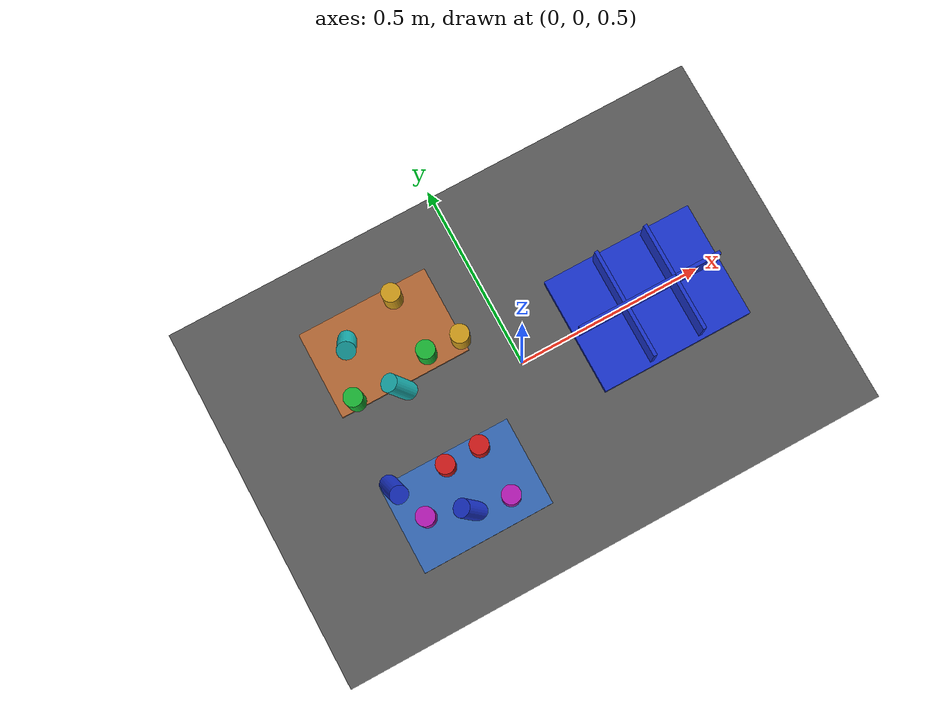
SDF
<?xml version="1.0" ?>
<sdf version="1.9">
  <!-- Standalone M1B scene.  The controller-backed Panda is spawned by the
       existing launch path; this file never alters the frozen M1A cube world. -->
  <world name="industrial_cylinder_v1">
    <physics name="bullet" type="bullet"><max_step_size>0.001</max_step_size><real_time_factor>1.0</real_time_factor></physics>
    <plugin name="gz::sim::systems::Physics" filename="gz-sim-physics-system"><engine><filename>gz-physics-bullet-featherstone-plugin</filename></engine></plugin>
    <plugin name="gz::sim::systems::UserCommands" filename="gz-sim-user-commands-system"/>
    <plugin name="gz::sim::systems::SceneBroadcaster" filename="gz-sim-scene-broadcaster-system"/>
    <plugin name="gz::sim::systems::Sensors" filename="gz-sim-sensors-system"><render_engine>ogre2</render_engine></plugin>
    <gravity>0 0 -9.81</gravity>
    <light type="directional" name="industrial_light"><pose>0 0 5 0 0 0</pose><direction>-0.3 0.2 -0.9</direction><diffuse>0.9 0.9 0.9 1</diffuse></light>
    <model name="industrial_work_table"><static>true</static><link name="link"><pose>0 0 0.4 0 0 0</pose><collision name="collision"><geometry><box><size>1.5 1.0 0.1</size></box></geometry></collision><visual name="visual"><geometry><box><size>1.5 1.0 0.1</size></box></geometry><material><diffuse>0.35 0.35 0.35 1</diffuse></material></visual></link></model>
    <model name="camera_fixture"><static>true</static><link name="camera_rgbd"><pose>-0.80 -0.80 1.40 0 0.77 0.93</pose><sensor name="front_rgbd" type="rgbd_camera"><always_on>1</always_on><update_rate>15</update_rate><topic>/xh/camera/rgbd</topic><camera><horizontal_fov>1.047</horizontal_fov><image><width>640</width><height>480</height><format>R8G8B8</format></image><clip><near>0.1</near><far>4.0</far></clip></camera></sensor></link></model>
    <model name="incoming_zone_a"><static>true</static><link name="link"><pose>-0.28 -0.22 0.455 0 0 0</pose><visual name="visual"><geometry><box><size>0.36 0.24 0.01</size></box></geometry><material><diffuse>0.2 0.4 0.7 1</diffuse></material></visual></link></model>
    <model name="incoming_zone_b"><static>true</static><link name="link"><pose>-0.28 0.22 0.455 0 0 0</pose><visual name="visual"><geometry><box><size>0.36 0.24 0.01</size></box></geometry><material><diffuse>0.7 0.4 0.2 1</diffuse></material></visual></link></model>
    <!-- M1B_RANDOM_PARTS_BEGIN -->
    <model name="cylinder_01"><pose>-0.2884 -0.1351 0.5000 0.0000 0.0000 -0.6685</pose><link name="link"><inertial><mass>0.06</mass></inertial><collision name="collision"><geometry><cylinder><radius>0.025</radius><length>0.09</length></cylinder></geometry></collision><visual name="visual"><geometry><cylinder><radius>0.025</radius><length>0.09</length></cylinder></geometry><material><diffuse>0.800 0.100 0.100 1</diffuse><specular>0.15 0.15 0.15 1</specular></material></visual></link></model>
    <model name="cylinder_02"><pose>-0.4092 0.1181 0.5000 3.1416 0.0000 3.0081</pose><link name="link"><inertial><mass>0.06</mass></inertial><collision name="collision"><geometry><cylinder><radius>0.025</radius><length>0.09</length></cylinder></geometry></collision><visual name="visual"><geometry><cylinder><radius>0.025</radius><length>0.09</length></cylinder></geometry><material><diffuse>0.100 0.700 0.200 1</diffuse><specular>0.15 0.15 0.15 1</specular></material></visual></link></model>
    <model name="cylinder_03"><pose>-0.2856 -0.2590 0.4800 0.4500 -0.3000 -1.6292</pose><link name="link"><inertial><mass>0.06</mass></inertial><collision name="collision"><geometry><cylinder><radius>0.025</radius><length>0.09</length></cylinder></geometry></collision><visual name="visual"><geometry><cylinder><radius>0.025</radius><length>0.09</length></cylinder></geometry><material><diffuse>0.100 0.200 0.800 1</diffuse><specular>0.15 0.15 0.15 1</specular></material></visual></link></model>
    <model name="cylinder_04"><pose>-0.2059 0.3055 0.5000 0.0000 0.0000 1.1371</pose><link name="link"><inertial><mass>0.06</mass></inertial><collision name="collision"><geometry><cylinder><radius>0.025</radius><length>0.09</length></cylinder></geometry></collision><visual name="visual"><geometry><cylinder><radius>0.025</radius><length>0.09</length></cylinder></geometry><material><diffuse>0.800 0.600 0.100 1</diffuse><specular>0.15 0.15 0.15 1</specular></material></visual></link></model>
    <model name="cylinder_05"><pose>-0.1828 -0.2772 0.5000 3.1416 0.0000 3.0832</pose><link name="link"><inertial><mass>0.06</mass></inertial><collision name="collision"><geometry><cylinder><radius>0.025</radius><length>0.09</length></cylinder></geometry></collision><visual name="visual"><geometry><cylinder><radius>0.025</radius><length>0.09</length></cylinder></geometry><material><diffuse>0.700 0.100 0.700 1</diffuse><specular>0.15 0.15 0.15 1</specular></material></visual></link></model>
    <model name="cylinder_06"><pose>-0.3637 0.2559 0.4800 0.4500 -0.3000 0.2249</pose><link name="link"><inertial><mass>0.06</mass></inertial><collision name="collision"><geometry><cylinder><radius>0.025</radius><length>0.09</length></cylinder></geometry></collision><visual name="visual"><geometry><cylinder><radius>0.025</radius><length>0.09</length></cylinder></geometry><material><diffuse>0.100 0.700 0.700 1</diffuse><specular>0.15 0.15 0.15 1</specular></material></visual></link></model>
    <model name="cylinder_07"><pose>-0.1935 -0.1327 0.5000 0.0000 0.0000 -1.7708</pose><link name="link"><inertial><mass>0.06</mass></inertial><collision name="collision"><geometry><cylinder><radius>0.025</radius><length>0.09</length></cylinder></geometry></collision><visual name="visual"><geometry><cylinder><radius>0.025</radius><length>0.09</length></cylinder></geometry><material><diffuse>0.800 0.100 0.100 1</diffuse><specular>0.15 0.15 0.15 1</specular></material></visual></link></model>
    <model name="cylinder_08"><pose>-0.1975 0.1380 0.5000 3.1416 0.0000 -1.3449</pose><link name="link"><inertial><mass>0.06</mass></inertial><collision name="collision"><geometry><cylinder><radius>0.025</radius><length>0.09</length></cylinder></geometry></collision><visual name="visual"><geometry><cylinder><radius>0.025</radius><length>0.09</length></cylinder></geometry><material><diffuse>0.100 0.700 0.200 1</diffuse><specular>0.15 0.15 0.15 1</specular></material></visual></link></model>
    <model name="cylinder_09"><pose>-0.4297 -0.1227 0.4800 0.4500 -0.3000 0.8548</pose><link name="link"><inertial><mass>0.06</mass></inertial><collision name="collision"><geometry><cylinder><radius>0.025</radius><length>0.09</length></cylinder></geometry></collision><visual name="visual"><geometry><cylinder><radius>0.025</radius><length>0.09</length></cylinder></geometry><material><diffuse>0.100 0.200 0.800 1</diffuse><specular>0.15 0.15 0.15 1</specular></material></visual></link></model>
    <model name="cylinder_10"><pose>-0.1047 0.1325 0.5000 0.0000 0.0000 -0.8970</pose><link name="link"><inertial><mass>0.06</mass></inertial><collision name="collision"><geometry><cylinder><radius>0.025</radius><length>0.09</length></cylinder></geometry></collision><visual name="visual"><geometry><cylinder><radius>0.025</radius><length>0.09</length></cylinder></geometry><material><diffuse>0.800 0.600 0.100 1</diffuse><specular>0.15 0.15 0.15 1</specular></material></visual></link></model>
    <model name="cylinder_11"><pose>-0.3905 -0.2235 0.5000 3.1416 0.0000 -0.8397</pose><link name="link"><inertial><mass>0.06</mass></inertial><collision name="collision"><geometry><cylinder><radius>0.025</radius><length>0.09</length></cylinder></geometry></collision><visual name="visual"><geometry><cylinder><radius>0.025</radius><length>0.09</length></cylinder></geometry><material><diffuse>0.700 0.100 0.700 1</diffuse><specular>0.15 0.15 0.15 1</specular></material></visual></link></model>
    <model name="cylinder_12"><pose>-0.2983 0.0970 0.4800 0.4500 -0.3000 -1.7264</pose><link name="link"><inertial><mass>0.06</mass></inertial><collision name="collision"><geometry><cylinder><radius>0.025</radius><length>0.09</length></cylinder></geometry></collision><visual name="visual"><geometry><cylinder><radius>0.025</radius><length>0.09</length></cylinder></geometry><material><diffuse>0.100 0.700 0.700 1</diffuse><specular>0.15 0.15 0.15 1</specular></material></visual></link></model>
    <!-- M1B_RANDOM_PARTS_END -->
    <model name="blue_partition_bin"><static>true</static><pose>0.36 0 0.45 0 0 0</pose><link name="link"><collision name="floor"><pose>0 0 0.01 0 0 0</pose><geometry><box><size>0.42 0.32 0.02</size></box></geometry></collision><visual name="floor_visual"><pose>0 0 0.01 0 0 0</pose><geometry><box><size>0.42 0.32 0.02</size></box></geometry><material><diffuse>0.1 0.2 0.8 1</diffuse></material></visual><visual name="row_divider"><pose>0 0 0.06 0 0 0</pose><geometry><box><size>0.40 0.01 0.10</size></box></geometry><material><diffuse>0.1 0.2 0.8 1</diffuse></material></visual><visual name="col_divider_a"><pose>-0.07 0 0.06 0 0 0</pose><geometry><box><size>0.01 0.30 0.10</size></box></geometry><material><diffuse>0.1 0.2 0.8 1</diffuse></material></visual><visual name="col_divider_b"><pose>0.07 0 0.06 0 0 0</pose><geometry><box><size>0.01 0.30 0.10</size></box></geometry><material><diffuse>0.1 0.2 0.8 1</diffuse></material></visual></link></model>
    <!-- Reserved only: second table, bin transport corridor, stackable-bin
         collision volume, and second arm mounting namespace. -->
  </world>
</sdf>
